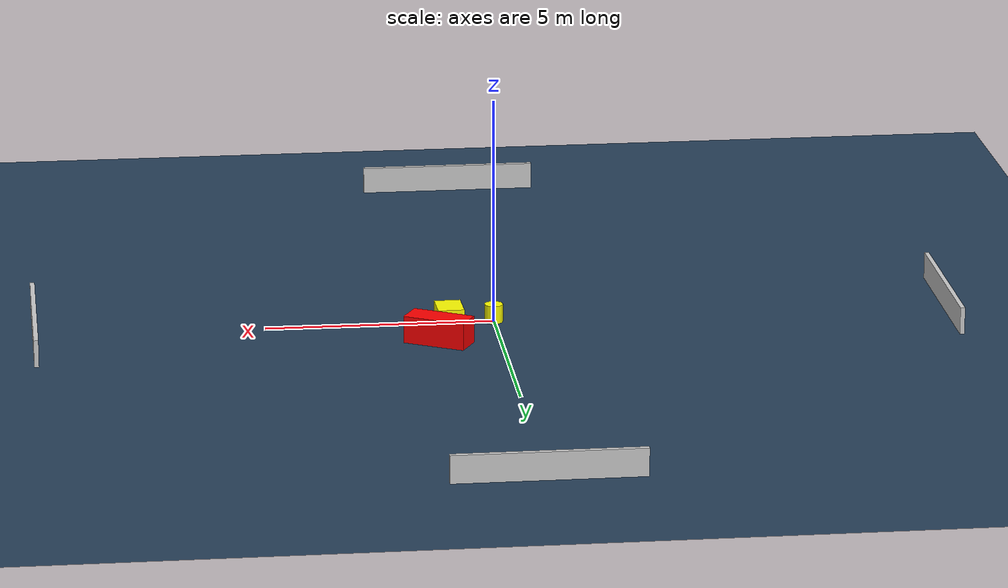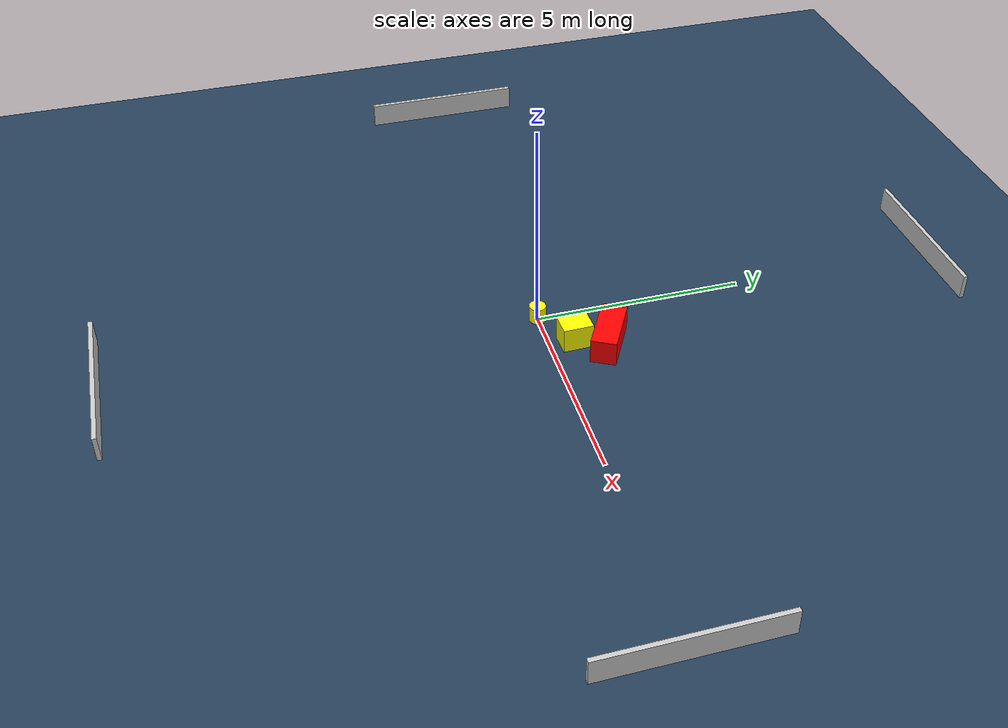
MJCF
<?xml version="1.0" ?>
<mujoco model="generated_environment">
  <option timestep="0.01" integrator="RK4" cone="elliptic"/>
  <default>
    <geom density="1"/>
  </default>
  <asset>
    <texture builtin="gradient" height="3072" name="skybox" rgb1="0.3 0.5 0.7" rgb2="0 0 0" type="skybox" width="512"/>
    <texture builtin="checker" height="300" name="groundplane" rgb1="0.2 0.3 0.4" rgb2="0.1 0.2 0.3" type="2d" width="300"/>
    <material name="groundplane" reflectance="0.2" texrepeat="5 5" texture="groundplane"/>
  </asset>
  <worldbody>
    <light dir="0 0 -1" directional="true" pos="0 0 1.5"/>
    <geom condim="3" friction="0.5 0.005 0.001" material="groundplane" name="floor" pos="0 0 0" size="0 0 0.05" type="plane"/>
    <body name="walls">
      <geom name="wall_1" condim="4" pos="-10.0 0.0 0.3" rgba="0.800000011920929 0.800000011920929 0.800000011920929 1.0" size="0.05 2.0 0.3" type="box"/>
      <geom name="wall_2" condim="4" pos="10.0 0.0 0.3" rgba="0.800000011920929 0.800000011920929 0.800000011920929 1.0" size="0.05 2.0 0.3" type="box"/>
      <geom name="wall_3" condim="4" pos="0.0 -10.0 0.3" rgba="0.800000011920929 0.800000011920929 0.800000011920929 1.0" size="2.0 0.05 0.3" type="box"/>
      <geom name="wall_4" condim="4" pos="0.0 10.0 0.3" rgba="0.800000011920929 0.800000011920929 0.800000011920929 1.0" size="2.0 0.05 0.3" type="box"/>
    </body>
    <body name="robot">
      <joint name="joint_x" type="slide" pos="0 0 0" axis="1 0 0"/>
      <joint name="joint_y" type="slide" pos="0 0 0" axis="0 1 0"/>
      <geom name="robot" type="cylinder" pos="0.0 0.0 0.2" size="0.2 0.2 0.0" mass="5.0" friction="1.0 0.005 0.0001" condim="4" rgba="1.0 1.0 0.0 1.0"/>
    </body>
    <body name="obstacle_1_movable">
      <geom name="obstacle_1_movable" condim="4" pos="1.0389540005270448 0.5863070958916401 0.3" euler="0 0 91.59867004210048" friction="0.0 0.005 0.001" rgba="1.0 1.0 0.0 1.0" size="0.3557671554975266 0.285085721962931 0.3" type="box" mass="0.1"/>
      <joint type="free"/>
    </body>
    <body name="obstacle_2_static">
      <geom name="obstacle_2_static" condim="4" pos="1.3379197782387582 1.3061519540489668 0.3" euler="0 0 241.2267236185115" friction="0.0 0.005 0.001" rgba="1.0 0.0 0.0 1.0" size="0.2993384578233885 0.6973221357119579 0.3" type="box"/>
    </body>
  </worldbody>
  <actuator>
    <motor name="actuator_x" joint="joint_x" gear="1" ctrlrange="-1 1"/>
    <motor name="actuator_y" joint="joint_y" gear="1" ctrlrange="-1 1"/>
  </actuator>
</mujoco>
